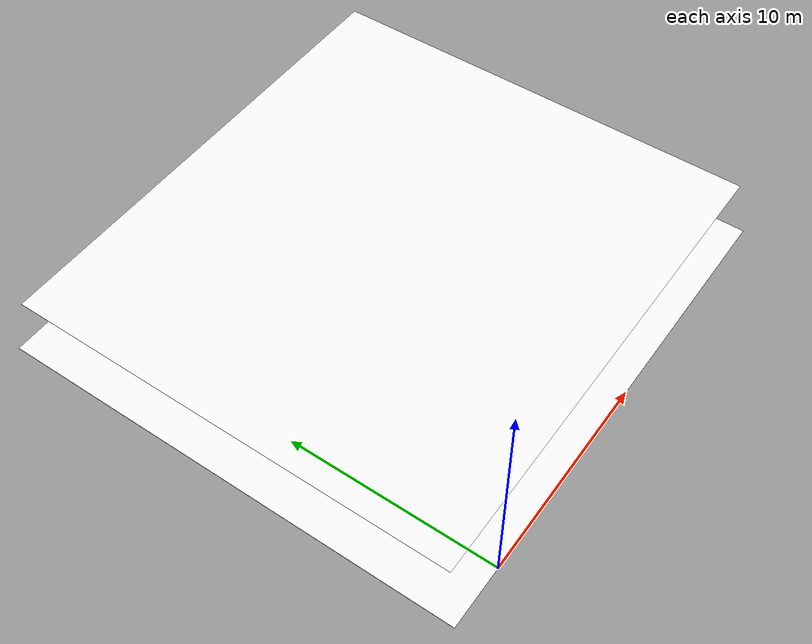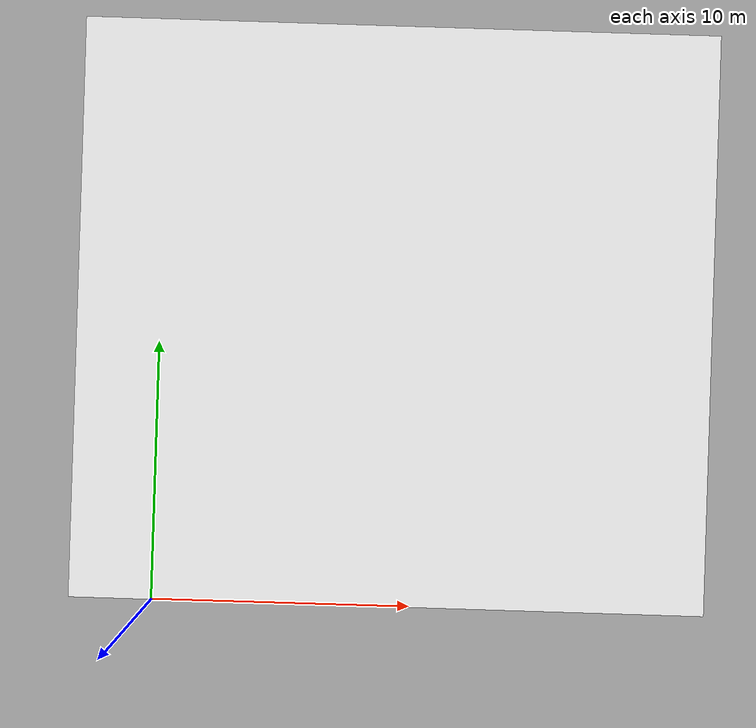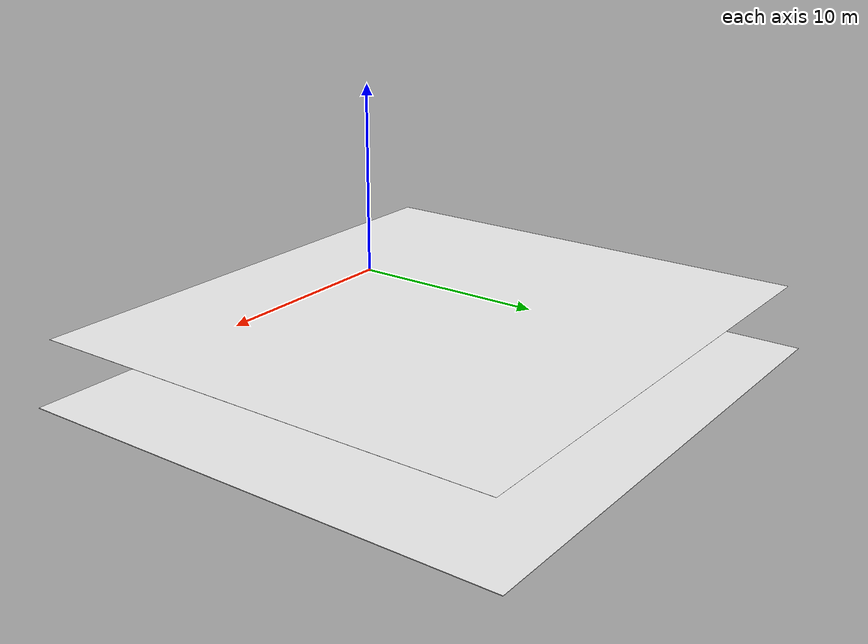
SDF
<sdf version="1.6">
 <world name="office_world">
  <model name="ceiling">
   <pose>7.9699999999999998
        11.25
        3.0
        0
        3.141592653589793
        0</pose>
   <static>true</static>
   <link name="link">
    <visual name="visual">
     <geometry><plane><normal>0 0 1</normal><size>29.5 22.5</size></plane></geometry>
     <material>
      <ambient>1.0 1.0 1.0 1.0</ambient>
      <diffuse>1.0 1.0 1.0 1.0</diffuse>
      <specular>0.2 0.2 0.2 1.0</specular>
      <emissive>0 0 0 1</emissive>
      <pbr><metal><albedo_map>file://media/materials/textures/ceiling.png</albedo_map></metal></pbr>
     </material>
    </visual>
   </link>
  </model>
  <model name="floor">
   <pose>9.1
        11.25
        -0.001
        0
        0
        0</pose>
   <static>true</static>
   <link name="link">
    <visual name="visual">
     <geometry><plane><normal>0 0 1</normal><size>24.2 22.5</size></plane></geometry>
     <material>
      <ambient>1.0 1.0 1.0 1.0</ambient>
      <diffuse>1.0 1.0 1.0 1.0</diffuse>
      <specular>0.2 0.2 0.2 1.0</specular>
      <emissive>0 0 0 1</emissive>
      <pbr><metal><albedo_map>file://media/materials/textures/hallway.png</albedo_map></metal></pbr>
     </material>
    </visual>
    <collision name="collision">
     <geometry><plane><normal>0 0 1</normal><size>29.5 22.5</size></plane></geometry>
     <surface><friction><ode><mu>1</mu><mu2>1</mu2></ode></friction></surface>
    </collision>
   </link>
  </model>
  <model name="ceiling_aruco_grid">
   <static>true</static>
   <link name="link">
    <visual name="ceiling_aruco_markers">
     <pose>9.1 11.25 2.989000 3.1415926535897931 0.0 0.00</pose>
     <geometry><box><size>23.35 21.35 0.002000</size></box></geometry>
     <material>
      <ambient>1 1 1 1</ambient>
      <diffuse>1 1 1 1</diffuse>
      <specular>0.1 0.1 0.1 1</specular>
      <emissive>0 0 0 1</emissive>
      <pbr>
       <metal>
        <albedo_map>file://models/aruco_marker_grid/textures/aruco_markers.png</albedo_map>
        <emissive_map>file://models/aruco_marker_grid/textures/aruco_markers.png</emissive_map>
       </metal>
      </pbr>
     </material>
    </visual>
   </link>
  </model>
 </world>
</sdf>
